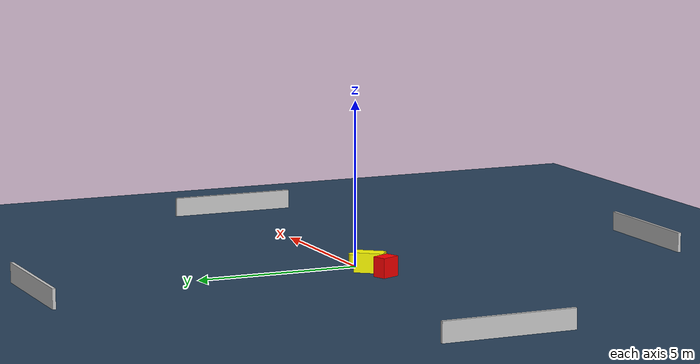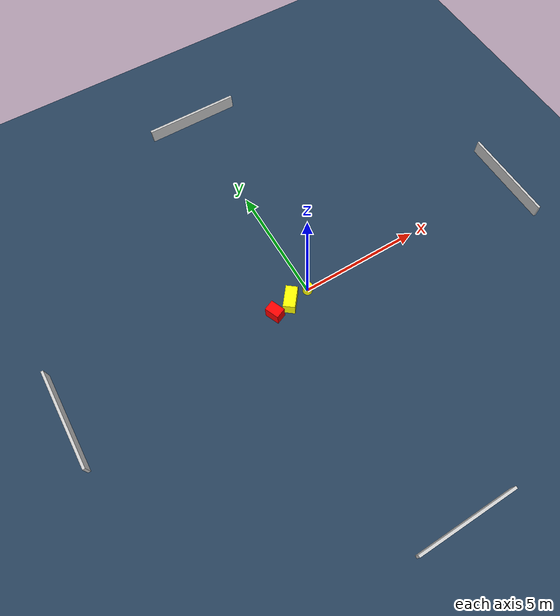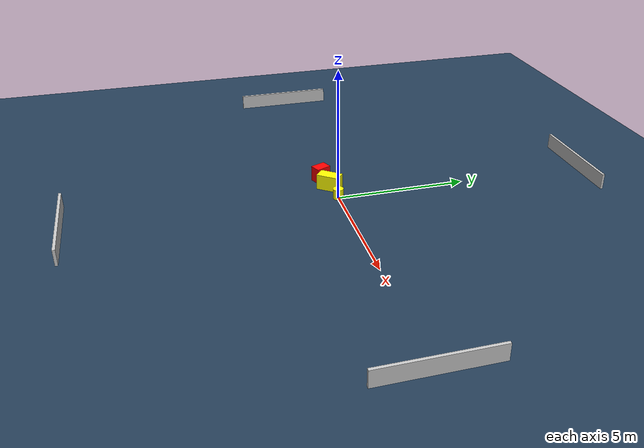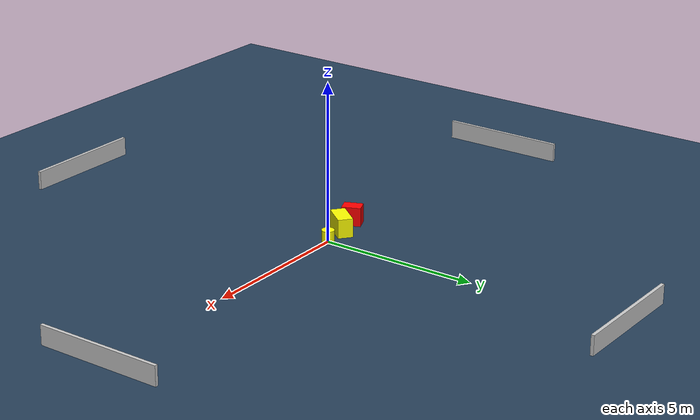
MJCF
<?xml version="1.0" ?>
<mujoco model="generated_environment">
  <option timestep="0.01" integrator="RK4" cone="elliptic"/>
  <default>
    <geom density="1"/>
  </default>
  <asset>
    <texture builtin="gradient" height="3072" name="skybox" rgb1="0.3 0.5 0.7" rgb2="0 0 0" type="skybox" width="512"/>
    <texture builtin="checker" height="300" name="groundplane" rgb1="0.2 0.3 0.4" rgb2="0.1 0.2 0.3" type="2d" width="300"/>
    <material name="groundplane" reflectance="0.2" texrepeat="5 5" texture="groundplane"/>
  </asset>
  <worldbody>
    <light dir="0 0 -1" directional="true" pos="0 0 1.5"/>
    <geom condim="3" friction="0.5 0.005 0.001" material="groundplane" name="floor" pos="0 0 0" size="0 0 0.05" type="plane"/>
    <body name="walls">
      <geom name="wall_1" condim="4" pos="-10.0 0.0 0.3" rgba="0.800000011920929 0.800000011920929 0.800000011920929 1.0" size="0.05 2.0 0.3" type="box"/>
      <geom name="wall_2" condim="4" pos="10.0 0.0 0.3" rgba="0.800000011920929 0.800000011920929 0.800000011920929 1.0" size="0.05 2.0 0.3" type="box"/>
      <geom name="wall_3" condim="4" pos="0.0 -10.0 0.3" rgba="0.800000011920929 0.800000011920929 0.800000011920929 1.0" size="2.0 0.05 0.3" type="box"/>
      <geom name="wall_4" condim="4" pos="0.0 10.0 0.3" rgba="0.800000011920929 0.800000011920929 0.800000011920929 1.0" size="2.0 0.05 0.3" type="box"/>
    </body>
    <body name="robot">
      <joint name="joint_x" type="slide" pos="0 0 0" axis="1 0 0"/>
      <joint name="joint_y" type="slide" pos="0 0 0" axis="0 1 0"/>
      <geom name="robot" type="cylinder" pos="0.0 0.0 0.2" size="0.2 0.2 0.0" mass="5.0" friction="1.0 0.005 0.0001" condim="4" rgba="1.0 1.0 0.0 1.0"/>
    </body>
    <body name="obstacle_1_movable">
      <geom name="obstacle_1_movable" condim="4" pos="-0.8368669798334009 -0.10981000147400843 0.3" euler="0 0 321.7263447991717" friction="0.0 0.005 0.001" rgba="1.0 1.0 0.0 1.0" size="0.2361741498404798 0.4423990043229256 0.3" type="box" mass="0.1"/>
      <joint type="free"/>
    </body>
    <body name="obstacle_2_static">
      <geom name="obstacle_2_static" condim="4" pos="-1.6151919039099687 -0.26041944793704774 0.3" euler="0 0 202.86345489712062" friction="0.0 0.005 0.001" rgba="1.0 0.0 0.0 1.0" size="0.21596036122809142 0.29928758460961186 0.3" type="box"/>
    </body>
  </worldbody>
  <actuator>
    <motor name="actuator_x" joint="joint_x" gear="1" ctrlrange="-1 1"/>
    <motor name="actuator_y" joint="joint_y" gear="1" ctrlrange="-1 1"/>
  </actuator>
</mujoco>
